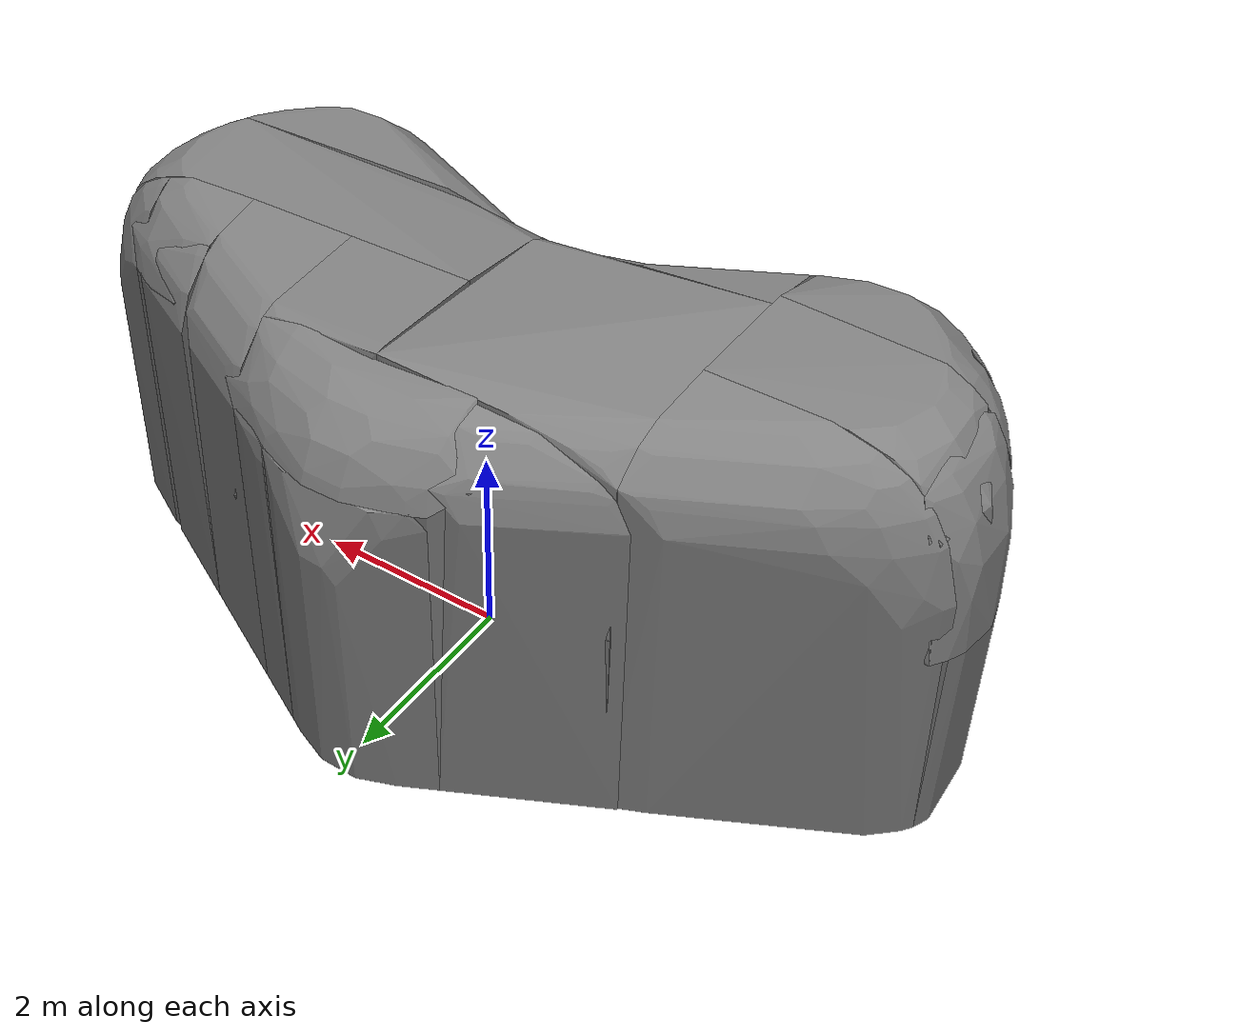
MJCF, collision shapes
<mujoco model="groups">
  <asset>
    <mesh name="groups" file="groups.obj"/>
    <mesh name="groups_collision_0" file="groups_collision_0.obj"/>
    <mesh name="groups_collision_1" file="groups_collision_1.obj"/>
    <mesh name="groups_collision_2" file="groups_collision_2.obj"/>
    <mesh name="groups_collision_3" file="groups_collision_3.obj"/>
    <mesh name="groups_collision_4" file="groups_collision_4.obj"/>
    <mesh name="groups_collision_5" file="groups_collision_5.obj"/>
    <mesh name="groups_collision_6" file="groups_collision_6.obj"/>
    <mesh name="groups_collision_7" file="groups_collision_7.obj"/>
    <mesh name="groups_collision_8" file="groups_collision_8.obj"/>
    <mesh name="groups_collision_9" file="groups_collision_9.obj"/>
    <mesh name="groups_collision_10" file="groups_collision_10.obj"/>
    <mesh name="groups_collision_11" file="groups_collision_11.obj"/>
    <mesh name="groups_collision_12" file="groups_collision_12.obj"/>
    <mesh name="groups_collision_13" file="groups_collision_13.obj"/>
    <mesh name="groups_collision_14" file="groups_collision_14.obj"/>
    <mesh name="groups_collision_15" file="groups_collision_15.obj"/>
    <mesh name="groups_collision_16" file="groups_collision_16.obj"/>
    <mesh name="groups_collision_17" file="groups_collision_17.obj"/>
    <mesh name="groups_collision_18" file="groups_collision_18.obj"/>
    <mesh name="groups_collision_19" file="groups_collision_19.obj"/>
    <mesh name="groups_collision_20" file="groups_collision_20.obj"/>
    <mesh name="groups_collision_21" file="groups_collision_21.obj"/>
    <mesh name="groups_collision_22" file="groups_collision_22.obj"/>
    <mesh name="groups_collision_23" file="groups_collision_23.obj"/>
    <mesh name="groups_collision_24" file="groups_collision_24.obj"/>
    <mesh name="groups_collision_25" file="groups_collision_25.obj"/>
    <mesh name="groups_collision_26" file="groups_collision_26.obj"/>
    <mesh name="groups_collision_27" file="groups_collision_27.obj"/>
    <mesh name="groups_collision_28" file="groups_collision_28.obj"/>
    <mesh name="groups_collision_29" file="groups_collision_29.obj"/>
    <mesh name="groups_collision_30" file="groups_collision_30.obj"/>
    <mesh name="groups_collision_31" file="groups_collision_31.obj"/>
  </asset>
  <worldbody>
    <body name="groups">
      <geom mesh="groups" type="mesh" contype="0" conaffinity="0" group="2"/>
      <geom mesh="groups_collision_0" type="mesh" group="3"/>
      <geom mesh="groups_collision_1" type="mesh" group="3"/>
      <geom mesh="groups_collision_2" type="mesh" group="3"/>
      <geom mesh="groups_collision_3" type="mesh" group="3"/>
      <geom mesh="groups_collision_4" type="mesh" group="3"/>
      <geom mesh="groups_collision_5" type="mesh" group="3"/>
      <geom mesh="groups_collision_6" type="mesh" group="3"/>
      <geom mesh="groups_collision_7" type="mesh" group="3"/>
      <geom mesh="groups_collision_8" type="mesh" group="3"/>
      <geom mesh="groups_collision_9" type="mesh" group="3"/>
      <geom mesh="groups_collision_10" type="mesh" group="3"/>
      <geom mesh="groups_collision_11" type="mesh" group="3"/>
      <geom mesh="groups_collision_12" type="mesh" group="3"/>
      <geom mesh="groups_collision_13" type="mesh" group="3"/>
      <geom mesh="groups_collision_14" type="mesh" group="3"/>
      <geom mesh="groups_collision_15" type="mesh" group="3"/>
      <geom mesh="groups_collision_16" type="mesh" group="3"/>
      <geom mesh="groups_collision_17" type="mesh" group="3"/>
      <geom mesh="groups_collision_18" type="mesh" group="3"/>
      <geom mesh="groups_collision_19" type="mesh" group="3"/>
      <geom mesh="groups_collision_20" type="mesh" group="3"/>
      <geom mesh="groups_collision_21" type="mesh" group="3"/>
      <geom mesh="groups_collision_22" type="mesh" group="3"/>
      <geom mesh="groups_collision_23" type="mesh" group="3"/>
      <geom mesh="groups_collision_24" type="mesh" group="3"/>
      <geom mesh="groups_collision_25" type="mesh" group="3"/>
      <geom mesh="groups_collision_26" type="mesh" group="3"/>
      <geom mesh="groups_collision_27" type="mesh" group="3"/>
      <geom mesh="groups_collision_28" type="mesh" group="3"/>
      <geom mesh="groups_collision_29" type="mesh" group="3"/>
      <geom mesh="groups_collision_30" type="mesh" group="3"/>
      <geom mesh="groups_collision_31" type="mesh" group="3"/>
    </body>
  </worldbody>
</mujoco>
